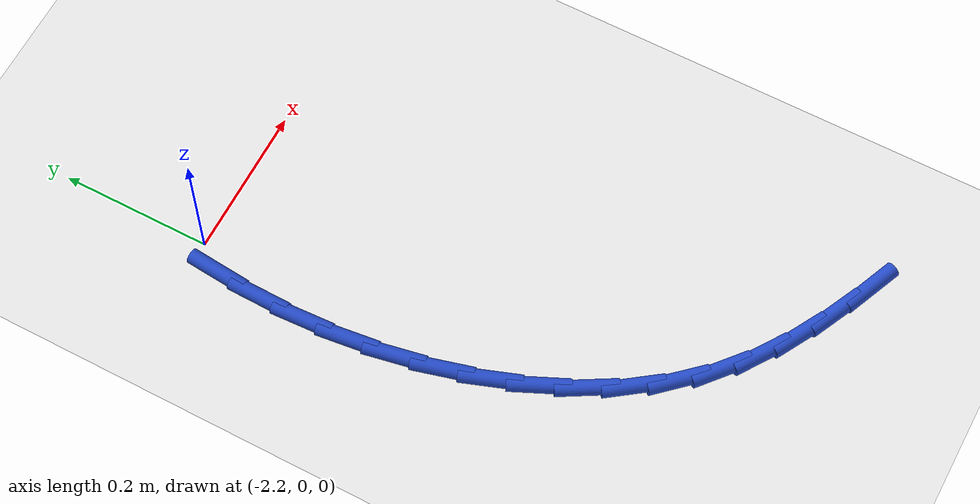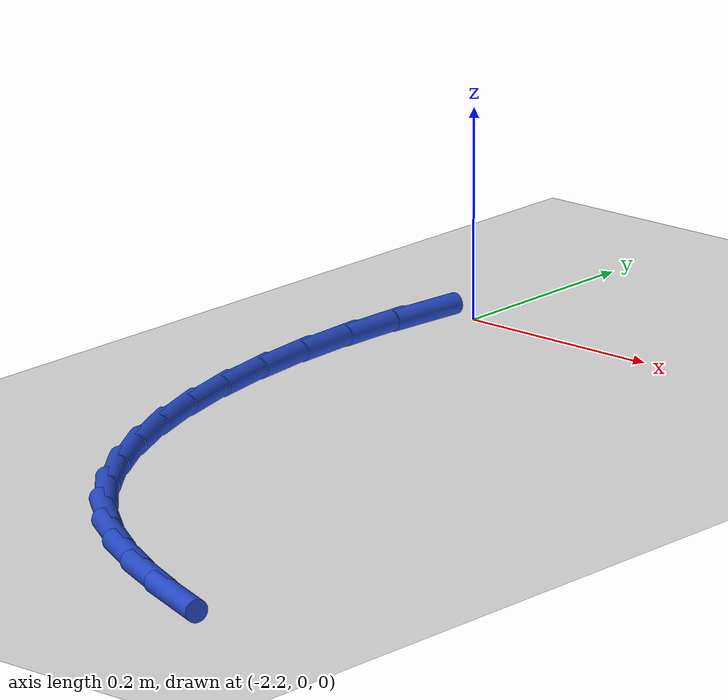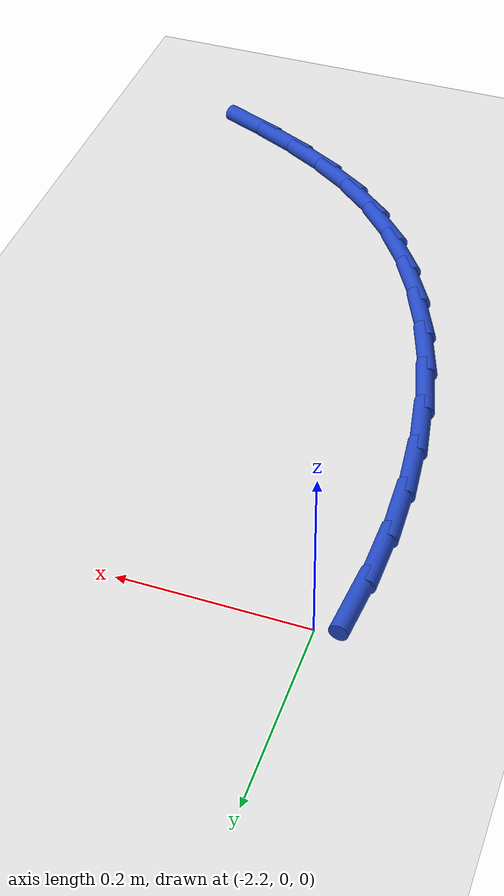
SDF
<sdf version="1.6">
 <world name="default">
  <model name="ground_plane">
   <static>1</static>
   <link name="link">
    <collision name="collision">
     <geometry><plane><normal>0 0 1</normal><size>100 100</size></plane></geometry>
     <surface><friction><ode><mu>100</mu><mu2>50</mu2></ode></friction></surface>
    </collision>
    <visual name="visual">
     <cast_shadows>0</cast_shadows>
     <geometry><plane><normal>0 0 1</normal><size>100 100</size></plane></geometry>
     <material>
      <script><uri>file://media/materials/scripts/gazebo.material</uri><name>Gazebo/WhiteGlow</name></script>
     </material>
    </visual>
   </link>
  </model>
  <model name="line">
   <link name="link_60">
    <pose>-2.22777224118168 -0.03679779459530385 0.01 0 1.57 1.4834988450807711</pose>
    <collision name="collision">
     <geometry><cylinder><radius>0.01</radius><length>0.08</length></cylinder></geometry>
    </collision>
    <visual name="visual">
     <material>
      <script><name>Gazebo/Blue</name><uri>file://media/materials/scripts/gazebo.material</uri></script>
     </material>
     <geometry><cylinder><radius>0.01</radius><length>0.08</length></cylinder></geometry>
    </visual>
   </link>
   <link name="link_61">
    <pose>-2.2331457386877833 -0.0981952169954269 0.01 0 1.57 1.5516238254865489</pose>
    <collision name="collision">
     <geometry><cylinder><radius>0.01</radius><length>0.08</length></cylinder></geometry>
    </collision>
    <visual name="visual">
     <material>
      <script><name>Gazebo/Blue</name><uri>file://media/materials/scripts/gazebo.material</uri></script>
     </material>
     <geometry><cylinder><radius>0.01</radius><length>0.08</length></cylinder></geometry>
    </visual>
   </link>
   <link name="link_62">
    <pose>-2.234331393617005 -0.1600290711362656 0.01 0 1.57 -1.5220604852802242</pose>
    <collision name="collision">
     <geometry><cylinder><radius>0.01</radius><length>0.08</length></cylinder></geometry>
    </collision>
    <visual name="visual">
     <material>
      <script><name>Gazebo/Blue</name><uri>file://media/materials/scripts/gazebo.material</uri></script>
     </material>
     <geometry><cylinder><radius>0.01</radius><length>0.08</length></cylinder></geometry>
    </visual>
   </link>
   <link name="link_63">
    <pose>-2.23132252718946 -0.2217184511647481 0.01 0 1.57 -1.4530755472008994</pose>
    <collision name="collision">
     <geometry><cylinder><radius>0.01</radius><length>0.08</length></cylinder></geometry>
    </collision>
    <visual name="visual">
     <material>
      <script><name>Gazebo/Blue</name><uri>file://media/materials/scripts/gazebo.material</uri></script>
     </material>
     <geometry><cylinder><radius>0.01</radius><length>0.08</length></cylinder></geometry>
    </visual>
   </link>
   <link name="link_64">
    <pose>-2.224112460625264 -0.2826824512278 0.01 0 1.57 -1.3816922553492423</pose>
    <collision name="collision">
     <geometry><cylinder><radius>0.01</radius><length>0.08</length></cylinder></geometry>
    </collision>
    <visual name="visual">
     <material>
      <script><name>Gazebo/Blue</name><uri>file://media/materials/scripts/gazebo.material</uri></script>
     </material>
     <geometry><cylinder><radius>0.01</radius><length>0.08</length></cylinder></geometry>
    </visual>
   </link>
   <link name="link_65">
    <pose>-2.212694515144531 -0.3423401654723493 0.01 0 1.57 -1.3065285743284014</pose>
    <collision name="collision">
     <geometry><cylinder><radius>0.01</radius><length>0.08</length></cylinder></geometry>
    </collision>
    <visual name="visual">
     <material>
      <script><name>Gazebo/Blue</name><uri>file://media/materials/scripts/gazebo.material</uri></script>
     </material>
     <geometry><cylinder><radius>0.01</radius><length>0.08</length></cylinder></geometry>
    </visual>
   </link>
   <link name="link_66">
    <pose>-2.1970620119673745 -0.4001106880453239 0.01 0 1.57 -1.2261235893116071</pose>
    <collision name="collision">
     <geometry><cylinder><radius>0.01</radius><length>0.08</length></cylinder></geometry>
    </collision>
    <visual name="visual">
     <material>
      <script><name>Gazebo/Blue</name><uri>file://media/materials/scripts/gazebo.material</uri></script>
     </material>
     <geometry><cylinder><radius>0.01</radius><length>0.08</length></cylinder></geometry>
    </visual>
   </link>
   <link name="link_67">
    <pose>-2.177208272313912 -0.45541311309364985 0.01 0 1.57 -1.138945755444745</pose>
    <collision name="collision">
     <geometry><cylinder><radius>0.01</radius><length>0.08</length></cylinder></geometry>
    </collision>
    <visual name="visual">
     <material>
      <script><name>Gazebo/Blue</name><uri>file://media/materials/scripts/gazebo.material</uri></script>
     </material>
     <geometry><cylinder><radius>0.01</radius><length>0.08</length></cylinder></geometry>
    </visual>
   </link>
   <link name="link_68">
    <pose>-2.153126617404256 -0.5076665347642547 0.01 0 1.57 -1.0434505500104776</pose>
    <collision name="collision">
     <geometry><cylinder><radius>0.01</radius><length>0.08</length></cylinder></geometry>
    </collision>
    <visual name="visual">
     <material>
      <script><name>Gazebo/Blue</name><uri>file://media/materials/scripts/gazebo.material</uri></script>
     </material>
     <geometry><cylinder><radius>0.01</radius><length>0.08</length></cylinder></geometry>
    </visual>
   </link>
   <link name="link_69">
    <pose>-2.124810368458521 -0.5562900472040659 0.01 0 1.57 -0.9382201369971006</pose>
    <collision name="collision">
     <geometry><cylinder><radius>0.01</radius><length>0.08</length></cylinder></geometry>
    </collision>
    <visual name="visual">
     <material>
      <script><name>Gazebo/Blue</name><uri>file://media/materials/scripts/gazebo.material</uri></script>
     </material>
     <geometry><cylinder><radius>0.01</radius><length>0.08</length></cylinder></geometry>
    </visual>
   </link>
   <link name="link_70">
    <pose>-2.092252846696823 -0.6007027445600115 0.01 0 1.57 -0.8222208920285199</pose>
    <collision name="collision">
     <geometry><cylinder><radius>0.01</radius><length>0.08</length></cylinder></geometry>
    </collision>
    <visual name="visual">
     <material>
      <script><name>Gazebo/Blue</name><uri>file://media/materials/scripts/gazebo.material</uri></script>
     </material>
     <geometry><cylinder><radius>0.01</radius><length>0.08</length></cylinder></geometry>
    </visual>
   </link>
   <link name="link_71">
    <pose>-2.0554473733392764 -0.6403237209790171 0.01 0 1.57 -0.6989467369230913</pose>
    <collision name="collision">
     <geometry><cylinder><radius>0.01</radius><length>0.08</length></cylinder></geometry>
    </collision>
    <visual name="visual">
     <material>
      <script><name>Gazebo/Blue</name><uri>file://media/materials/scripts/gazebo.material</uri></script>
     </material>
     <geometry><cylinder><radius>0.01</radius><length>0.08</length></cylinder></geometry>
    </visual>
   </link>
   <link name="link_72">
    <pose>-2.014465202254004 -0.6747688044565079 0.01 0 1.57 -0.5895203475367145</pose>
    <collision name="collision">
     <geometry><cylinder><radius>0.01</radius><length>0.08</length></cylinder></geometry>
    </collision>
    <visual name="visual">
     <material>
      <script><name>Gazebo/Blue</name><uri>file://media/materials/scripts/gazebo.material</uri></script>
     </material>
     <geometry><cylinder><radius>0.01</radius><length>0.08</length></cylinder></geometry>
    </visual>
   </link>
   <link name="link_73">
    <pose>-1.9697760306409413 -0.7046596567697353 0.01 0 1.57 -0.5026693332407949</pose>
    <collision name="collision">
     <geometry><cylinder><radius>0.01</radius><length>0.08</length></cylinder></geometry>
    </collision>
    <visual name="visual">
     <material>
      <script><name>Gazebo/Blue</name><uri>file://media/materials/scripts/gazebo.material</uri></script>
     </material>
     <geometry><cylinder><radius>0.01</radius><length>0.08</length></cylinder></geometry>
    </visual>
   </link>
   <link name="link_74">
    <pose>-1.9219765570052552 -0.7309385428857698 0.01 0 1.57 -0.4387453730039177</pose>
    <collision name="collision">
     <geometry><cylinder><radius>0.01</radius><length>0.08</length></cylinder></geometry>
    </collision>
    <visual name="visual">
     <material>
      <script><name>Gazebo/Blue</name><uri>file://media/materials/scripts/gazebo.material</uri></script>
     </material>
     <geometry><cylinder><radius>0.01</radius><length>0.08</length></cylinder></geometry>
    </visual>
   </link>
   <link name="link_75">
    <pose>-1.8716635342889196 -0.754547865192421 0.01 0 1.57 -0.3967428933308357</pose>
    <collision name="collision">
     <geometry><cylinder><radius>0.01</radius><length>0.08</length></cylinder></geometry>
    </collision>
    <visual name="visual">
     <material>
      <script><name>Gazebo/Blue</name><uri>file://media/materials/scripts/gazebo.material</uri></script>
     </material>
     <geometry><cylinder><radius>0.01</radius><length>0.08</length></cylinder></geometry>
    </visual>
   </link>
  </model>
 </world>
</sdf>
